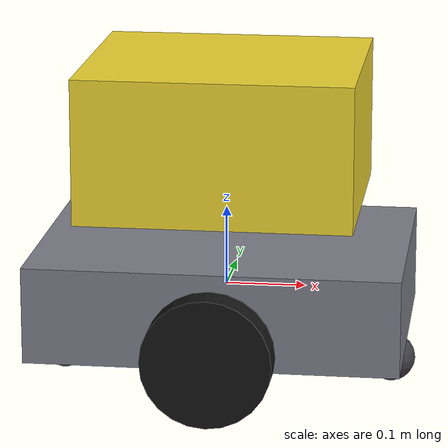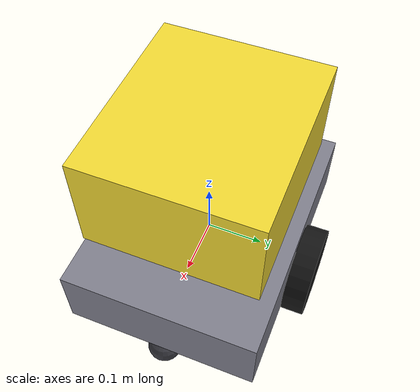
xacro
<?xml version="1.0"?>
<robot xmlns:xacro="http://www.ros.org/wiki/xacro" name="$(arg name)">
  <xacro:arg name="name" default="hauler"/>
  <xacro:arg name="ns" default="hauler"/>
  <xacro:include filename="$(find lunar_descriptions)/urdf/common.xacro"/>

  <!-- ===== 底盘 ===== -->
  <link name="base_link">
    <visual>
      <geometry><box size="0.46 0.34 0.12"/></geometry>
      <material name="lunar_grey"/>
    </visual>
    <collision>
      <geometry><box size="0.46 0.34 0.12"/></geometry>
    </collision>
    <xacro:box_inertial mass="9.0" lx="0.46" ly="0.34" lz="0.12"/>
  </link>

  <!-- 低配重：把重心压到接近地面，抑制料斗倾倒/急停时的倾倒失稳 -->
  <link name="ballast_link">
    <xacro:box_inertial mass="4.0" lx="0.34" ly="0.30" lz="0.04"/>
  </link>
  <joint name="ballast_joint" type="fixed">
    <parent link="base_link"/>
    <child link="ballast_link"/>
    <origin xyz="0 0 -0.06" rpy="0 0 0"/>
  </joint>

  <xacro:drive_wheel prefix="left" parent="base_link" xyz="0 0.19 -0.04" rpy="1.5708 0 0" mass="0.5" radius="0.08" width="0.04"/>
  <xacro:drive_wheel prefix="right" parent="base_link" xyz="0 -0.19 -0.04" rpy="1.5708 0 0" mass="0.5" radius="0.08" width="0.04"/>

  <xacro:skid_pad prefix="front" parent="base_link" xyz="0.21 0 -0.09" mass="0.05" radius="0.03"/>
  <xacro:skid_pad prefix="rear" parent="base_link" xyz="-0.21 0 -0.09" mass="0.05" radius="0.03"/>

  <!-- ===== 料斗（倾卸关节，绕 y 轴后倾）===== -->
  <link name="bin_link">
    <visual>
      <geometry><box size="0.34 0.30 0.18"/></geometry>
      <material name="lunar_yellow"/>
    </visual>
    <collision>
      <geometry><box size="0.34 0.30 0.18"/></geometry>
    </collision>
    <xacro:box_inertial mass="1.5" lx="0.34" ly="0.30" lz="0.18"/>
  </link>
  <joint name="dump_joint" type="revolute">
    <parent link="base_link"/>
    <child link="bin_link"/>
    <origin xyz="0 0 0.20" rpy="0 0 0"/>
    <axis xyz="0 1 0"/>
    <limit lower="-1.0" upper="0.3" effort="20" velocity="2"/>
  </joint>

  <!-- ===== gazebo_ros2_control 桥接 ===== -->
  <gazebo>
    <plugin filename="libgazebo_ros2_control.so" name="gazebo_ros2_control">
      <robot_param>robot_description</robot_param>
      <robot_param_node>$(arg name)_rsp</robot_param_node>
      <parameters>$(find lunar_control)/config/hauler_controllers.yaml</parameters>
      <ros>
        <namespace>$(arg ns)</namespace>
      </ros>
    </plugin>
  </gazebo>

  <ros2_control name="GazeboSystem" type="system">
    <hardware>
      <plugin>gazebo_ros2_control/GazeboSystem</plugin>
    </hardware>
    <joint name="left_wheel_joint">
      <command_interface name="velocity"/>
      <state_interface name="position"/>
      <state_interface name="velocity"/>
    </joint>
    <joint name="right_wheel_joint">
      <command_interface name="velocity"/>
      <state_interface name="position"/>
      <state_interface name="velocity"/>
    </joint>
    <joint name="dump_joint">
      <command_interface name="position"/>
      <state_interface name="position"/>
    </joint>
  </ros2_control>
</robot>

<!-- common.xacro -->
<robot xmlns:xacro="http://www.ros.org/wiki/xacro">

  <!-- ===== 材质 ===== -->
  <material name="lunar_grey"><color rgba="0.5 0.5 0.55 1"/></material>
  <material name="lunar_dark"><color rgba="0.25 0.25 0.28 1"/></material>
  <material name="lunar_black"><color rgba="0.08 0.08 0.08 1"/></material>
  <material name="lunar_blue"><color rgba="0.2 0.4 0.9 1"/></material>
  <material name="lunar_orange"><color rgba="0.9 0.5 0.1 1"/></material>
  <material name="lunar_green"><color rgba="0.2 0.8 0.3 1"/></material>
  <material name="lunar_yellow"><color rgba="0.95 0.85 0.2 1"/></material>

  <!-- ===== 盒体质心惯性（单位 SI）===== -->
  <xacro:macro name="box_inertial" params="mass lx ly lz">
    <inertial>
      <mass value="${mass}"/>
      <inertia ixx="${mass*(ly*ly+lz*lz)/12.0}" iyy="${mass*(lx*lx+lz*lz)/12.0}"
               izz="${mass*(lx*lx+ly*ly)/12.0}" ixy="0" ixz="0" iyz="0"/>
    </inertial>
  </xacro:macro>

  <!-- ===== 驱动轮（绕 y 轴滚动，差分驱动用）===== -->
  <xacro:macro name="drive_wheel" params="prefix parent xyz rpy mass radius width">
    <link name="${prefix}_wheel">
      <visual>
        <geometry><cylinder radius="${radius}" length="${width}"/></geometry>
        <material name="lunar_black"/>
      </visual>
      <collision>
        <geometry><cylinder radius="${radius}" length="${width}"/></geometry>
      </collision>
      <inertial>
        <mass value="${mass}"/>
        <inertia ixx="${mass*radius*radius/2.0}" iyy="${mass*radius*radius/2.0}"
                 izz="${mass*radius*radius/2.0}" ixy="0" ixz="0" iyz="0"/>
      </inertial>
    </link>
    <joint name="${prefix}_wheel_joint" type="continuous">
      <parent link="${parent}"/>
      <child link="${prefix}_wheel"/>
      <origin xyz="${xyz}" rpy="${rpy}"/>
      <axis xyz="0 0 -1"/>
      <limit effort="50" velocity="20"/>
      <dynamics damping="0.1"/>
    </joint>
    <gazebo reference="${prefix}_wheel">
      <mu1>1.5</mu1>
      <mu2>1.5</mu2>
    </gazebo>
  </xacro:macro>

  <!-- ===== 低摩擦支撑滑垫（前后各一，保持四点着地稳定）===== -->
  <xacro:macro name="skid_pad" params="prefix parent xyz mass radius">
    <link name="${prefix}_pad">
      <visual>
        <geometry><sphere radius="${radius}"/></geometry>
        <material name="lunar_dark"/>
      </visual>
      <collision>
        <geometry><sphere radius="${radius}"/></geometry>
      </collision>
      <inertial>
        <mass value="${mass}"/>
        <inertia ixx="${2.0*mass*radius*radius/5.0}" iyy="${2.0*mass*radius*radius/5.0}"
                 izz="${2.0*mass*radius*radius/5.0}" ixy="0" ixz="0" iyz="0"/>
      </inertial>
    </link>
    <joint name="${prefix}_pad_joint" type="fixed">
      <parent link="${parent}"/>
      <child link="${prefix}_pad"/>
      <origin xyz="${xyz}" rpy="0 0 0"/>
    </joint>
    <gazebo reference="${prefix}_pad">
      <mu1>0.05</mu1>
      <mu2>0.05</mu2>
    </gazebo>
  </xacro:macro>

  <!-- ===== 普通连杆（盒体）===== -->
  <xacro:macro name="box_link" params="name mass lx ly lz material">
    <link name="${name}">
      <visual>
        <geometry><box size="${lx} ${ly} ${lz}"/></geometry>
        <material name="${material}"/>
      </visual>
      <collision>
        <geometry><box size="${lx} ${ly} ${lz}"/></geometry>
      </collision>
      <xacro:box_inertial mass="${mass}" lx="${lx}" ly="${ly}" lz="${lz}"/>
    </link>
  </xacro:macro>

</robot>
